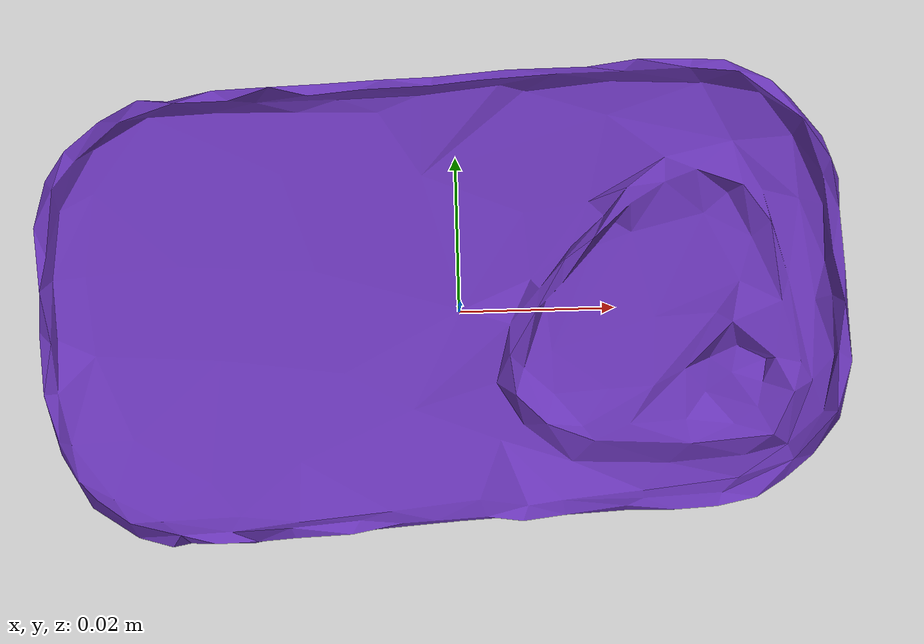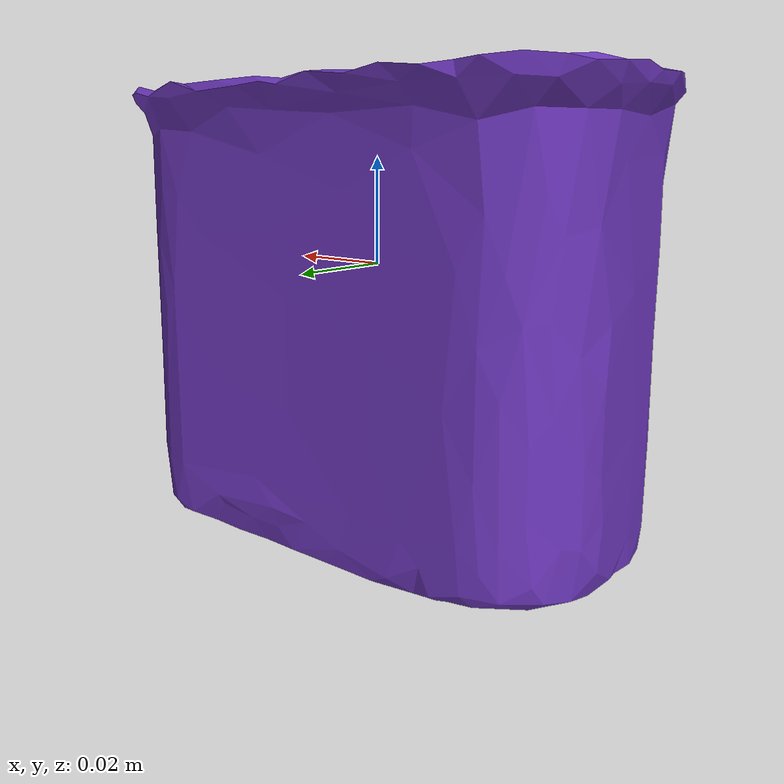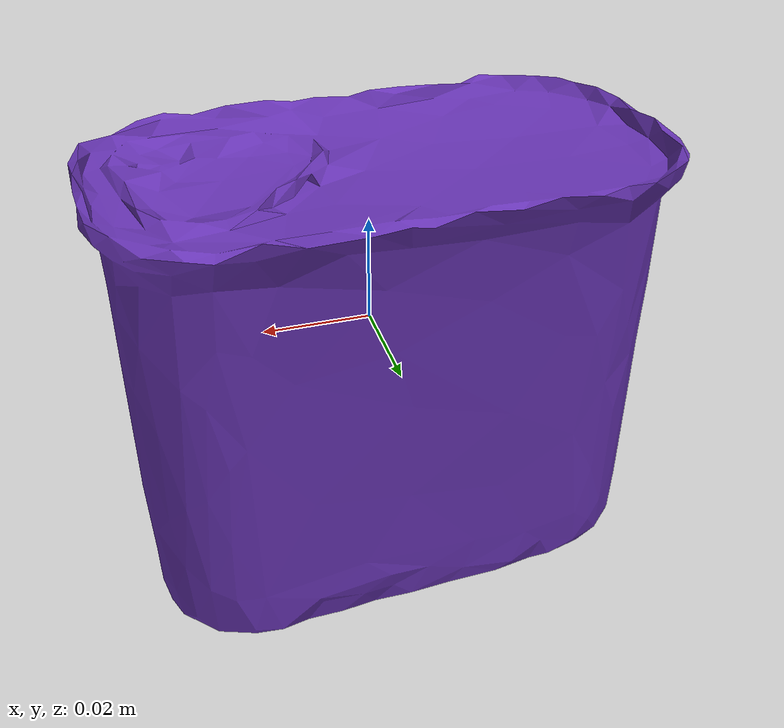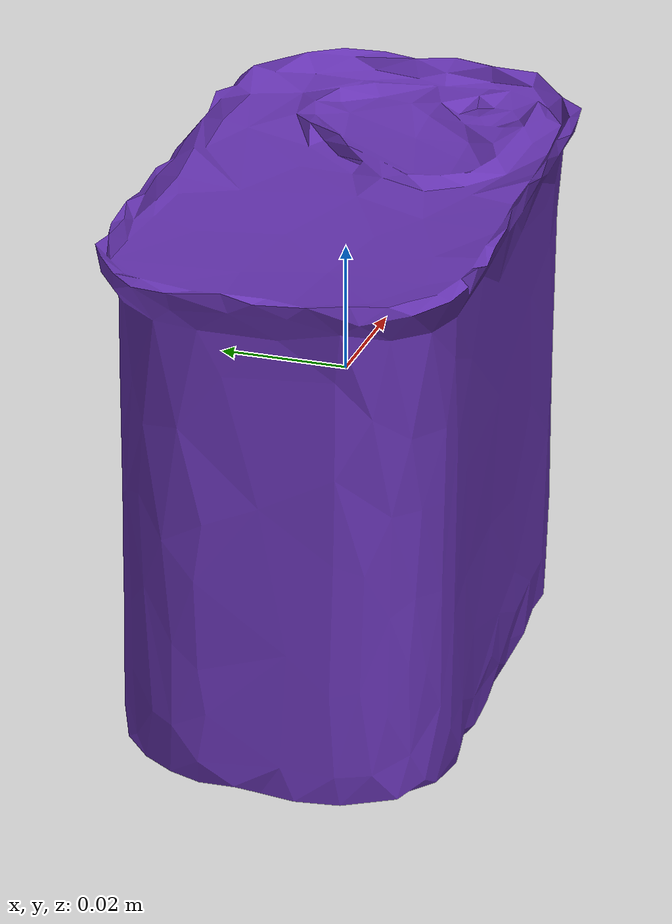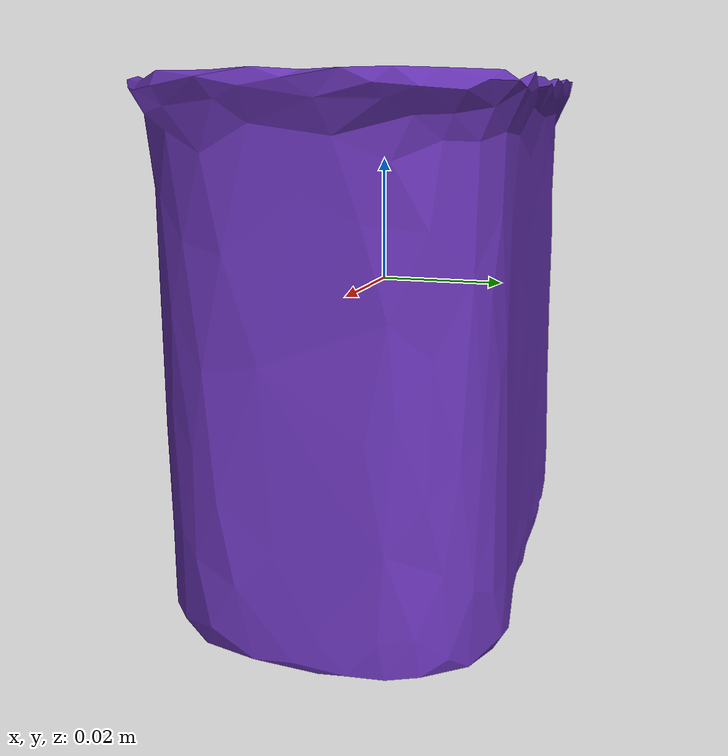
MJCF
<mujoco model="top_watertight_tiny">

  <asset>
    <mesh file="top_watertight_tiny.obj"/>
    <mesh file="top_watertight_tiny_collision_0.obj"/>
    <mesh file="top_watertight_tiny_collision_1.obj"/>
    <mesh file="top_watertight_tiny_collision_2.obj"/>
    <mesh file="top_watertight_tiny_collision_3.obj"/>
    <mesh file="top_watertight_tiny_collision_4.obj"/>
    <mesh file="top_watertight_tiny_collision_5.obj"/>
    <mesh file="top_watertight_tiny_collision_6.obj"/>
    <mesh file="top_watertight_tiny_collision_7.obj"/>
    <mesh file="top_watertight_tiny_collision_8.obj"/>
    <mesh file="top_watertight_tiny_collision_9.obj"/>
    <mesh file="top_watertight_tiny_collision_10.obj"/>
    <mesh file="top_watertight_tiny_collision_11.obj"/>
    <mesh file="top_watertight_tiny_collision_12.obj"/>
    <mesh file="top_watertight_tiny_collision_13.obj"/>
    <mesh file="top_watertight_tiny_collision_14.obj"/>
    <mesh file="top_watertight_tiny_collision_15.obj"/>
    <mesh file="top_watertight_tiny_collision_16.obj"/>
    <mesh file="top_watertight_tiny_collision_17.obj"/>
    <mesh file="top_watertight_tiny_collision_18.obj"/>
    <mesh file="top_watertight_tiny_collision_19.obj"/>
    <mesh file="top_watertight_tiny_collision_20.obj"/>
    <mesh file="top_watertight_tiny_collision_21.obj"/>
    <mesh file="top_watertight_tiny_collision_22.obj"/>
    <mesh file="top_watertight_tiny_collision_23.obj"/>
  </asset>
  <worldbody>
    <body name="top_watertight_tiny">
      <freejoint/>
      <geom solimp="0.90 0.95 0.001" solref="0.02 1.0" density="100" friction="0.95 0.4 0.3" rgba="0.4 0.2 0.7 1" mesh="top_watertight_tiny" group="2" type="mesh" contype="0" conaffinity="0"/>
      <geom solimp="0.90 0.95 0.001" solref="0.02 1.0" density="100" friction="0.95 0.4 0.3" mesh="top_watertight_tiny_collision_0" rgba="0.5870764305623709 0.43813050857537905 0.45844479182540576 1" group="3" type="mesh"/>
      <geom solimp="0.90 0.95 0.001" solref="0.02 1.0" density="100" friction="0.95 0.4 0.3" mesh="top_watertight_tiny_collision_1" rgba="0.0724547489260271 0.3255493490418767 0.36667700811492465 1" group="3" type="mesh"/>
      <geom solimp="0.90 0.95 0.001" solref="0.02 1.0" density="100" friction="0.95 0.4 0.3" mesh="top_watertight_tiny_collision_2" rgba="0.7227006310797535 0.7300783593980061 0.30783535888790003 1" group="3" type="mesh"/>
      <geom solimp="0.90 0.95 0.001" solref="0.02 1.0" density="100" friction="0.95 0.4 0.3" mesh="top_watertight_tiny_collision_3" rgba="0.006569489277863494 0.9412004586371507 0.541060147268968 1" group="3" type="mesh"/>
      <geom solimp="0.90 0.95 0.001" solref="0.02 1.0" density="100" friction="0.95 0.4 0.3" mesh="top_watertight_tiny_collision_4" rgba="0.3774187789475649 0.7111167177710103 0.6400680896443685 1" group="3" type="mesh"/>
      <geom solimp="0.90 0.95 0.001" solref="0.02 1.0" density="100" friction="0.95 0.4 0.3" mesh="top_watertight_tiny_collision_5" rgba="0.6202911435141554 0.9926629491263844 0.1786409687937318 1" group="3" type="mesh"/>
      <geom solimp="0.90 0.95 0.001" solref="0.02 1.0" density="100" friction="0.95 0.4 0.3" mesh="top_watertight_tiny_collision_6" rgba="0.371088808278368 0.46630824081556965 0.16870535942472842 1" group="3" type="mesh"/>
      <geom solimp="0.90 0.95 0.001" solref="0.02 1.0" density="100" friction="0.95 0.4 0.3" mesh="top_watertight_tiny_collision_7" rgba="0.312015641657558 0.44269461761125206 0.830023625357553 1" group="3" type="mesh"/>
      <geom solimp="0.90 0.95 0.001" solref="0.02 1.0" density="100" friction="0.95 0.4 0.3" mesh="top_watertight_tiny_collision_8" rgba="0.5639573373506338 0.21071354500448936 0.8380260323126333 1" group="3" type="mesh"/>
      <geom solimp="0.90 0.95 0.001" solref="0.02 1.0" density="100" friction="0.95 0.4 0.3" mesh="top_watertight_tiny_collision_9" rgba="0.19659249844674176 0.28929109057987623 0.12076381412041615 1" group="3" type="mesh"/>
      <geom solimp="0.90 0.95 0.001" solref="0.02 1.0" density="100" friction="0.95 0.4 0.3" mesh="top_watertight_tiny_collision_10" rgba="0.6675201758737429 0.31536204358635844 0.7887272184184886 1" group="3" type="mesh"/>
      <geom solimp="0.90 0.95 0.001" solref="0.02 1.0" density="100" friction="0.95 0.4 0.3" mesh="top_watertight_tiny_collision_11" rgba="0.11643221739621101 0.26058617795196715 0.7670680392654374 1" group="3" type="mesh"/>
      <geom solimp="0.90 0.95 0.001" solref="0.02 1.0" density="100" friction="0.95 0.4 0.3" mesh="top_watertight_tiny_collision_12" rgba="0.7196450711866607 0.5111127018069948 0.4724332733381372 1" group="3" type="mesh"/>
      <geom solimp="0.90 0.95 0.001" solref="0.02 1.0" density="100" friction="0.95 0.4 0.3" mesh="top_watertight_tiny_collision_13" rgba="0.6833416114660777 0.7492046556088844 0.40047686754538114 1" group="3" type="mesh"/>
      <geom solimp="0.90 0.95 0.001" solref="0.02 1.0" density="100" friction="0.95 0.4 0.3" mesh="top_watertight_tiny_collision_14" rgba="0.2615429086210437 0.835720364170704 0.2865938279087894 1" group="3" type="mesh"/>
      <geom solimp="0.90 0.95 0.001" solref="0.02 1.0" density="100" friction="0.95 0.4 0.3" mesh="top_watertight_tiny_collision_15" rgba="0.9605926719353605 0.40882073887332715 0.18638266982403107 1" group="3" type="mesh"/>
      <geom solimp="0.90 0.95 0.001" solref="0.02 1.0" density="100" friction="0.95 0.4 0.3" mesh="top_watertight_tiny_collision_16" rgba="0.23088515885642547 0.11168410110196281 0.6309897211174654 1" group="3" type="mesh"/>
      <geom solimp="0.90 0.95 0.001" solref="0.02 1.0" density="100" friction="0.95 0.4 0.3" mesh="top_watertight_tiny_collision_17" rgba="0.7980281418805212 0.5996611468464945 0.2554899372915057 1" group="3" type="mesh"/>
      <geom solimp="0.90 0.95 0.001" solref="0.02 1.0" density="100" friction="0.95 0.4 0.3" mesh="top_watertight_tiny_collision_18" rgba="0.594686901477031 0.18263676257064132 0.34419387680582936 1" group="3" type="mesh"/>
      <geom solimp="0.90 0.95 0.001" solref="0.02 1.0" density="100" friction="0.95 0.4 0.3" mesh="top_watertight_tiny_collision_19" rgba="0.12949995391490587 0.2610964668582424 0.6098235437447543 1" group="3" type="mesh"/>
      <geom solimp="0.90 0.95 0.001" solref="0.02 1.0" density="100" friction="0.95 0.4 0.3" mesh="top_watertight_tiny_collision_20" rgba="0.2879297305409584 0.7817510529922723 0.9505152170409038 1" group="3" type="mesh"/>
      <geom solimp="0.90 0.95 0.001" solref="0.02 1.0" density="100" friction="0.95 0.4 0.3" mesh="top_watertight_tiny_collision_21" rgba="0.13216716711140875 0.5553771644074964 0.045546180302752926 1" group="3" type="mesh"/>
      <geom solimp="0.90 0.95 0.001" solref="0.02 1.0" density="100" friction="0.95 0.4 0.3" mesh="top_watertight_tiny_collision_22" rgba="0.25085801203333946 0.03255623896421456 0.8251369198623388 1" group="3" type="mesh"/>
      <geom solimp="0.90 0.95 0.001" solref="0.02 1.0" density="100" friction="0.95 0.4 0.3" mesh="top_watertight_tiny_collision_23" rgba="0.10715441387177049 0.45174605421430003 0.4145702069501215 1" group="3" type="mesh"/>
    </body>
  </worldbody>
</mujoco>
